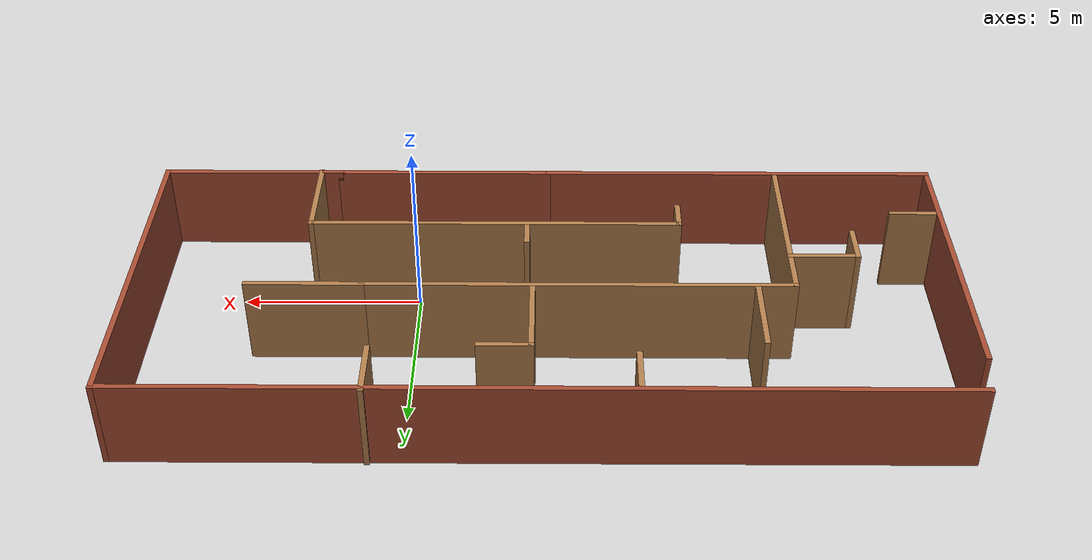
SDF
<?xml version='1.0'?>
<sdf version='1.7'>
  <model name='exploration_world2'>
    <pose>-3.61272 1.77327 0 0 -0 0</pose>
    <link name='Wall_27'>
      <collision name='Wall_27_Collision'>
        <geometry>
          <box>
            <size>6.25 0.15 2.5</size>
          </box>
        </geometry>
        <pose>0 0 1.25 0 -0 0</pose>
      </collision>
      <visual name='Wall_27_Visual'>
        <pose>0 0 1.25 0 -0 0</pose>
        <geometry>
          <box>
            <size>6.25 0.15 2.5</size>
          </box>
        </geometry>
        <material>
          <script>
            <uri>file://media/materials/scripts/gazebo.material</uri>
            <name>Gazebo/Bricks</name>
          </script>
          <ambient>1 1 1 1</ambient>
        </material>
        <meta>
          <layer>0</layer>
        </meta>
      </visual>
      <pose>3.00271 -4.82327 0 0 -0 0</pose>
    </link>
    <link name='Wall_28'>
      <collision name='Wall_28_Collision'>
        <geometry>
          <box>
            <size>5.25 0.15 2.5</size>
          </box>
        </geometry>
        <pose>0 0 1.25 0 -0 0</pose>
      </collision>
      <visual name='Wall_28_Visual'>
        <pose>0 0 1.25 0 -0 0</pose>
        <geometry>
          <box>
            <size>5.25 0.15 2.5</size>
          </box>
        </geometry>
        <material>
          <script>
            <uri>file://media/materials/scripts/gazebo.material</uri>
            <name>Gazebo/Bricks</name>
          </script>
          <ambient>1 1 1 1</ambient>
        </material>
        <meta>
          <layer>0</layer>
        </meta>
      </visual>
      <pose>8.60271 -4.82327 0 0 -0 0</pose>
    </link>
    <link name='Wall_29'>
      <collision name='Wall_29_Collision'>
        <geometry>
          <box>
            <size>9.75 0.15 2.5</size>
          </box>
        </geometry>
        <pose>0 0 1.25 0 -0 0</pose>
      </collision>
      <visual name='Wall_29_Visual'>
        <pose>0 0 1.25 0 -0 0</pose>
        <geometry>
          <box>
            <size>9.75 0.15 2.5</size>
          </box>
        </geometry>
        <material>
          <script>
            <uri>file://media/materials/scripts/gazebo.material</uri>
            <name>Gazebo/Bricks</name>
          </script>
          <ambient>1 1 1 1</ambient>
        </material>
        <meta>
          <layer>0</layer>
        </meta>
      </visual>
      <pose>11.1527 -0.023267 0 0 -0 1.5708</pose>
    </link>
    <link name='Wall_30'>
      <collision name='Wall_30_Collision'>
        <geometry>
          <box>
            <size>22.25 0.15 2.5</size>
          </box>
        </geometry>
        <pose>0 0 1.25 0 -0 0</pose>
      </collision>
      <visual name='Wall_30_Visual'>
        <pose>0 0 1.25 0 -0 0</pose>
        <geometry>
          <box>
            <size>22.25 0.15 2.5</size>
          </box>
        </geometry>
        <material>
          <script>
            <uri>file://media/materials/scripts/gazebo.material</uri>
            <name>Gazebo/Bricks</name>
          </script>
          <ambient>1 1 1 1</ambient>
        </material>
        <meta>
          <layer>0</layer>
        </meta>
      </visual>
      <pose>0.102715 4.77673 0 0 -0 3.14159</pose>
    </link>
    <link name='Wall_32'>
      <collision name='Wall_32_Collision'>
        <geometry>
          <box>
            <size>11.25 0.15 2.5</size>
          </box>
        </geometry>
        <pose>0 0 1.25 0 -0 0</pose>
      </collision>
      <visual name='Wall_32_Visual'>
        <pose>0 0 1.25 0 -0 0</pose>
        <geometry>
          <box>
            <size>11.25 0.15 2.5</size>
          </box>
        </geometry>
        <material>
          <script>
            <uri>file://media/materials/scripts/gazebo.material</uri>
            <name>Gazebo/Bricks</name>
          </script>
          <ambient>1 1 1 1</ambient>
        </material>
        <meta>
          <layer>0</layer>
        </meta>
      </visual>
      <pose>-5.59729 -4.82327 0 0 -0 3.14159</pose>
    </link>
    <link name='Wall_33'>
      <collision name='Wall_33_Collision'>
        <geometry>
          <box>
            <size>8.5 0.15 2.5</size>
          </box>
        </geometry>
        <pose>0 0 1.25 0 -0 0</pose>
      </collision>
      <visual name='Wall_33_Visual'>
        <pose>0 0 1.25 0 -0 0</pose>
        <geometry>
          <box>
            <size>8.5 0.15 2.5</size>
          </box>
        </geometry>
        <material>
          <script>
            <uri>file://media/materials/scripts/gazebo.material</uri>
            <name>Gazebo/Bricks</name>
          </script>
          <ambient>1 1 1 1</ambient>
        </material>
        <meta>
          <layer>0</layer>
        </meta>
      </visual>
      <pose>-11.1473 -0.648267 0 0 -0 1.5708</pose>
    </link>
    <link name='Wall_35'>
      <collision name='Wall_35_Collision'>
        <geometry>
          <box>
            <size>5.5 0.15 2.5</size>
          </box>
        </geometry>
        <pose>0 0 1.25 0 -0 0</pose>
      </collision>
      <visual name='Wall_35_Visual'>
        <pose>0 0 1.25 0 -0 0</pose>
        <geometry>
          <box>
            <size>5.5 0.15 2.5</size>
          </box>
        </geometry>
        <material>
          <script>
            <uri>file://media/materials/scripts/gazebo.material</uri>
            <name>Gazebo/Wood</name>
          </script>
          <ambient>1 1 1 1</ambient>
        </material>
        <meta>
          <layer>0</layer>
        </meta>
      </visual>
      <pose>-6.688 -2.088 0 0 -0 1.5708</pose>
    </link>
    <link name='Wall_36'>
      <collision name='Wall_36_Collision'>
        <geometry>
          <box>
            <size>11.75 0.15 2.5</size>
          </box>
        </geometry>
        <pose>0 0 1.25 0 -0 0</pose>
      </collision>
      <visual name='Wall_36_Visual'>
        <pose>0 0 1.25 0 -0 0</pose>
        <geometry>
          <box>
            <size>11.75 0.15 2.5</size>
          </box>
        </geometry>
        <material>
          <script>
            <uri>file://media/materials/scripts/gazebo.material</uri>
            <name>Gazebo/Wood</name>
          </script>
          <ambient>1 1 1 1</ambient>
        </material>
        <meta>
          <layer>0</layer>
        </meta>
      </visual>
      <pose>-0.887996 0.587003 0 0 -0 0</pose>
    </link>
    <link name='Wall_38'>
      <collision name='Wall_38_Collision'>
        <geometry>
          <box>
            <size>1.5 0.15 2.5</size>
          </box>
        </geometry>
        <pose>0 0 1.25 0 -0 0</pose>
      </collision>
      <visual name='Wall_38_Visual'>
        <pose>0 0 1.25 0 -0 0</pose>
        <geometry>
          <box>
            <size>1.5 0.15 2.5</size>
          </box>
        </geometry>
        <material>
          <script>
            <uri>file://media/materials/scripts/gazebo.material</uri>
            <name>Gazebo/Wood</name>
          </script>
          <ambient>0.435294 0.796078 0.67451 1</ambient>
        </material>
        <meta>
          <layer>0</layer>
        </meta>
      </visual>
      <pose>-2.39619 4.09545 0 0 -0 -1.5708</pose>
    </link>
    <link name='Wall_40'>
      <collision name='Wall_40_Collision'>
        <geometry>
          <box>
            <size>2.5 0.15 2.5</size>
          </box>
        </geometry>
        <pose>0 0 1.25 0 -0 0</pose>
      </collision>
      <visual name='Wall_40_Visual'>
        <pose>0 0 1.25 0 -0 0</pose>
        <geometry>
          <box>
            <size>2.5 0.15 2.5</size>
          </box>
        </geometry>
        <material>
          <script>
            <uri>file://media/materials/scripts/gazebo.material</uri>
            <name>Gazebo/Wood</name>
          </script>
          <ambient>0.435294 0.796078 0.67451 1</ambient>
        </material>
        <meta>
          <layer>0</layer>
        </meta>
      </visual>
      <pose>0.343196 1.92674 0 0 -0 1.5708</pose>
    </link>
    <link name='Wall_41'>
      <collision name='Wall_41_Collision'>
        <geometry>
          <box>
            <size>1.5 0.15 2.5</size>
          </box>
        </geometry>
        <pose>0 0 1.25 0 -0 0</pose>
      </collision>
      <visual name='Wall_41_Visual'>
        <pose>0 0 1.25 0 -0 0</pose>
        <geometry>
          <box>
            <size>1.5 0.15 2.5</size>
          </box>
        </geometry>
        <material>
          <script>
            <uri>file://media/materials/scripts/gazebo.material</uri>
            <name>Gazebo/Wood</name>
          </script>
          <ambient>0.435294 0.796078 0.67451 1</ambient>
        </material>
        <meta>
          <layer>0</layer>
        </meta>
      </visual>
      <pose>1.0182 3.10175 0 0 -0 0</pose>
    </link>
    <link name='Wall_43'>
      <collision name='Wall_43_Collision'>
        <geometry>
          <box>
            <size>1.75 0.15 2.5</size>
          </box>
        </geometry>
        <pose>0 0 1.25 0 -0 0</pose>
      </collision>
      <visual name='Wall_43_Visual'>
        <pose>0 0 1.25 0 -0 0</pose>
        <geometry>
          <box>
            <size>1.75 0.15 2.5</size>
          </box>
        </geometry>
        <material>
          <script>
            <uri>file://media/materials/scripts/gazebo.material</uri>
            <name>Gazebo/Wood</name>
          </script>
          <ambient>0.435294 0.796078 0.67451 1</ambient>
        </material>
        <meta>
          <layer>0</layer>
        </meta>
      </visual>
      <pose>4.50671 4.04586 0 0 -0 -1.5708</pose>
    </link>
    <link name='Wall_45'>
      <collision name='Wall_45_Collision'>
        <geometry>
          <box>
            <size>3.25 0.15 2.5</size>
          </box>
        </geometry>
        <pose>0 0 1.25 0 -0 0</pose>
      </collision>
      <visual name='Wall_45_Visual'>
        <pose>0 0 1.25 0 -0 0</pose>
        <geometry>
          <box>
            <size>3.25 0.15 2.5</size>
          </box>
        </geometry>
        <material>
          <script>
            <uri>file://media/materials/scripts/gazebo.material</uri>
            <name>Gazebo/Wood</name>
          </script>
          <ambient>1 1 1 1</ambient>
        </material>
        <meta>
          <layer>0</layer>
        </meta>
      </visual>
      <pose>6.462 0.587003 0 0 -0 0</pose>
    </link>
    <link name='Wall_47'>
      <collision name='Wall_47_Collision'>
        <geometry>
          <box>
            <size>2.75 0.15 2.5</size>
          </box>
        </geometry>
        <pose>0 0 1.25 0 -0 0</pose>
      </collision>
      <visual name='Wall_47_Visual'>
        <pose>0 0 1.25 0 -0 0</pose>
        <geometry>
          <box>
            <size>2.75 0.15 2.5</size>
          </box>
        </geometry>
        <material>
          <script>
            <uri>file://media/materials/scripts/gazebo.material</uri>
            <name>Gazebo/Wood</name>
          </script>
          <ambient>1 1 1 1</ambient>
        </material>
        <meta>
          <layer>0</layer>
        </meta>
      </visual>
      <pose>6.61159 -3.54586 0 0 -0 1.5708</pose>
    </link>
    <link name='Wall_48'>
      <collision name='Wall_48_Collision'>
        <geometry>
          <box>
            <size>10.5 0.15 2.5</size>
          </box>
        </geometry>
        <pose>0 0 1.25 0 -0 0</pose>
      </collision>
      <visual name='Wall_48_Visual'>
        <pose>0 0 1.25 0 -0 0</pose>
        <geometry>
          <box>
            <size>10.5 0.15 2.5</size>
          </box>
        </geometry>
        <material>
          <script>
            <uri>file://media/materials/scripts/gazebo.material</uri>
            <name>Gazebo/Wood</name>
          </script>
          <ambient>1 1 1 1</ambient>
        </material>
        <meta>
          <layer>0</layer>
        </meta>
      </visual>
      <pose>1.43659 -2.24586 0 0 -0 3.14159</pose>
    </link>
    <link name='Wall_49'>
      <collision name='Wall_49_Collision'>
        <geometry>
          <box>
            <size>1 0.15 2.5</size>
          </box>
        </geometry>
        <pose>0 0 1.25 0 -0 0</pose>
      </collision>
      <visual name='Wall_49_Visual'>
        <pose>0 0 1.25 0 -0 0</pose>
        <geometry>
          <box>
            <size>1 0.15 2.5</size>
          </box>
        </geometry>
        <material>
          <script>
            <uri>file://media/materials/scripts/gazebo.material</uri>
            <name>Gazebo/Wood</name>
          </script>
          <ambient>0.435294 0.796078 0.67451 1</ambient>
        </material>
        <meta>
          <layer>0</layer>
        </meta>
      </visual>
      <pose>-3.73841 -2.67086 0 0 -0 -1.5708</pose>
    </link>
    <link name='Wall_52'>
      <collision name='Wall_52_Collision'>
        <geometry>
          <box>
            <size>1 0.15 2.5</size>
          </box>
        </geometry>
        <pose>0 0 1.25 0 -0 0</pose>
      </collision>
      <visual name='Wall_52_Visual'>
        <pose>0 0 1.25 0 -0 0</pose>
        <geometry>
          <box>
            <size>1 0.15 2.5</size>
          </box>
        </geometry>
        <material>
          <script>
            <uri>file://media/materials/scripts/gazebo.material</uri>
            <name>Gazebo/Wood</name>
          </script>
          <ambient>0.435294 0.796078 0.67451 1</ambient>
        </material>
        <meta>
          <layer>0</layer>
        </meta>
      </visual>
      <pose>0.528241 -1.8071 0 0 -0 1.5708</pose>
    </link>
    <link name='Wall_54'>
      <collision name='Wall_54_Collision'>
        <geometry>
          <box>
            <size>2.5 0.15 2.5</size>
          </box>
        </geometry>
        <pose>0 0 1.25 0 -0 0</pose>
      </collision>
      <visual name='Wall_54_Visual'>
        <pose>0 0 1.25 0 -0 0</pose>
        <geometry>
          <box>
            <size>2.5 0.15 2.5</size>
          </box>
        </geometry>
        <material>
          <script>
            <uri>file://media/materials/scripts/gazebo.material</uri>
            <name>Gazebo/Wood</name>
          </script>
          <ambient>0.435294 0.796078 0.67451 1</ambient>
        </material>
        <meta>
          <layer>0</layer>
        </meta>
      </visual>
      <pose>-5.67076 1.76483 0 0 -0 1.5708</pose>
    </link>
    <link name='Wall_56'>
      <collision name='Wall_56_Collision'>
        <geometry>
          <box>
            <size>2 0.15 2.5</size>
          </box>
        </geometry>
        <pose>0 0 1.25 0 -0 0</pose>
      </collision>
      <visual name='Wall_56_Visual'>
        <pose>0 0 1.25 0 -0 0</pose>
        <geometry>
          <box>
            <size>2 0.15 2.5</size>
          </box>
        </geometry>
        <material>
          <script>
            <uri>file://media/materials/scripts/gazebo.material</uri>
            <name>Gazebo/Wood</name>
          </script>
          <ambient>0.435294 0.796078 0.67451 1</ambient>
        </material>
        <meta>
          <layer>0</layer>
        </meta>
      </visual>
      <pose>-7.61351 -0.751745 0 0 -0 3.14159</pose>
    </link>
    <link name='Wall_57'>
      <collision name='Wall_57_Collision'>
        <geometry>
          <box>
            <size>1.25 0.15 2.5</size>
          </box>
        </geometry>
        <pose>0 0 1.25 0 -0 0</pose>
      </collision>
      <visual name='Wall_57_Visual'>
        <pose>0 0 1.25 0 -0 0</pose>
        <geometry>
          <box>
            <size>1.25 0.15 2.5</size>
          </box>
        </geometry>
        <material>
          <script>
            <uri>file://media/materials/scripts/gazebo.material</uri>
            <name>Gazebo/Wood</name>
          </script>
          <ambient>0.435294 0.796078 0.67451 1</ambient>
        </material>
        <meta>
          <layer>0</layer>
        </meta>
      </visual>
      <pose>-8.53851 -1.30174 0 0 -0 -1.5708</pose>
    </link>
    <link name='Wall_59'>
      <collision name='Wall_59_Collision'>
        <geometry>
          <box>
            <size>1.5 0.15 2.5</size>
          </box>
        </geometry>
        <pose>0 0 1.25 0 -0 0</pose>
      </collision>
      <visual name='Wall_59_Visual'>
        <pose>0 0 1.25 0 -0 0</pose>
        <geometry>
          <box>
            <size>1.5 0.15 2.5</size>
          </box>
        </geometry>
        <material>
          <script>
            <uri>file://media/materials/scripts/gazebo.material</uri>
            <name>Gazebo/Wood</name>
          </script>
          <ambient>0.435294 0.796078 0.67451 1</ambient>
        </material>
        <meta>
          <layer>0</layer>
        </meta>
      </visual>
      <pose>-10.4777 -2.81037 0 0 -0 0</pose>
    </link>
    <static>1</static>
  </model>
</sdf>
